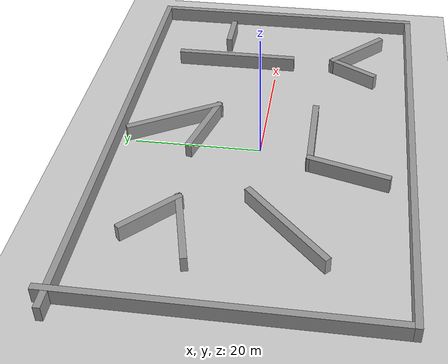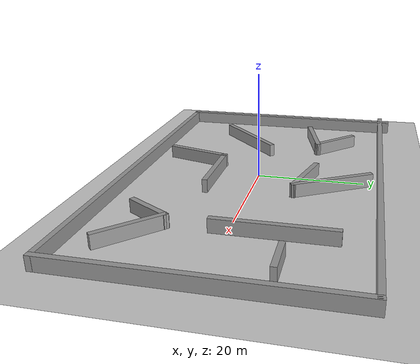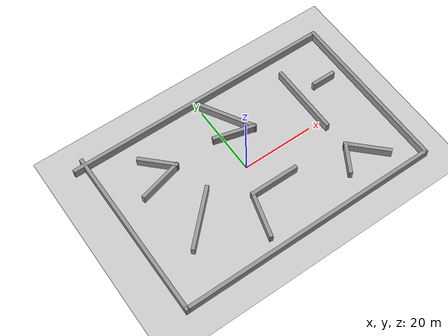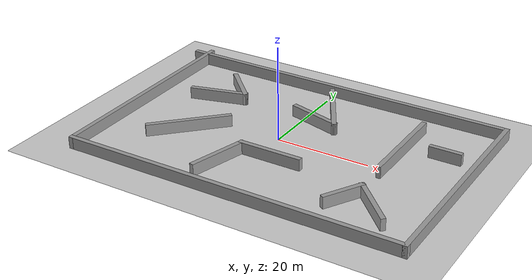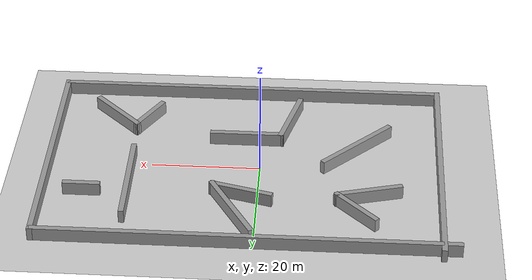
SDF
<sdf version="1.7">
 <world name="default">
  <light name="sun" type="directional">
   <pose>0 0 10 0 -0 0</pose>
   <diffuse>0.8 0.8 0.8 1</diffuse>
   <specular>0.2 0.2 0.2 1</specular>
   <attenuation>
    <range>1000</range>
    <constant>0.9</constant>
    <linear>0.01</linear>
    <quadratic>0.001</quadratic>
   </attenuation>
   <direction>-0.5 0.1 -0.9</direction>
   <spot><inner_angle>0</inner_angle><outer_angle>0</outer_angle><falloff>0</falloff></spot>
  </light>
  <model name="ground_plane">
   <static>1</static>
   <link name="link">
    <collision name="collision">
     <geometry><plane><normal>0 0 1</normal><size>100 100</size></plane></geometry>
     <surface>
      <contact><collide_bitmask>65535</collide_bitmask></contact>
      <friction><ode><mu>100</mu><mu2>50</mu2></ode></friction>
     </surface>
    </collision>
    <visual name="visual">
     <cast_shadows>0</cast_shadows>
     <geometry><plane><normal>0 0 1</normal><size>100 100</size></plane></geometry>
     <material>
      <script><uri>file://media/materials/scripts/gazebo.material</uri><name>Gazebo/Grey</name></script>
     </material>
    </visual>
   </link>
  </model>
  <gravity>0 0 -9.8</gravity>
  <magnetic_field>6e-06 2.3e-05 -4.2e-05</magnetic_field>
  <atmosphere type="adiabatic"/>
  <physics type="ode">
   <max_step_size>0.001</max_step_size>
   <real_time_factor>1</real_time_factor>
   <real_time_update_rate>1000</real_time_update_rate>
  </physics>
  <scene><ambient>0.4 0.4 0.4 1</ambient><background>0.7 0.7 0.7 1</background><shadows>1</shadows></scene>
  <spherical_coordinates>
   <surface_model>EARTH_WGS84</surface_model>
   <latitude_deg>0</latitude_deg>
   <longitude_deg>0</longitude_deg>
   <elevation>0</elevation>
   <heading_deg>0</heading_deg>
  </spherical_coordinates>
  <model name="Untitled">
   <pose>1.5201 0.580999 0 0 -0 0</pose>
   <link name="Wall_11">
    <collision name="Wall_11_Collision">
     <geometry><box><size>12.35 1 2.5</size></box></geometry>
     <pose>0 0 1.25 0 -0 0</pose>
    </collision>
    <visual name="Wall_11_Visual">
     <pose>0 0 1.25 0 -0 0</pose>
     <geometry><box><size>12.35 1 2.5</size></box></geometry>
     <material>
      <script><uri>file://media/materials/scripts/gazebo.material</uri><name>Gazebo/Grey</name></script>
      <ambient>1 1 1 1</ambient>
     </material>
     <meta><layer>0</layer></meta>
    </visual>
    <pose>26.3849 -14.5965 0 0 -0 2.35626</pose>
   </link>
   <link name="Wall_12">
    <collision name="Wall_12_Collision">
     <geometry><box><size>9.09967 1 2.5</size></box></geometry>
     <pose>0 0 1.25 0 -0 0</pose>
    </collision>
    <visual name="Wall_12_Visual">
     <pose>0 0 1.25 0 -0 0</pose>
     <geometry><box><size>9.09967 1 2.5</size></box></geometry>
     <material>
      <script><uri>file://media/materials/scripts/gazebo.material</uri><name>Gazebo/Grey</name></script>
      <ambient>1 1 1 1</ambient>
     </material>
     <meta><layer>0</layer></meta>
    </visual>
    <pose>20.3469 -14.091 0 0 -0 -2.09444</pose>
   </link>
   <link name="Wall_14">
    <collision name="Wall_14_Collision">
     <geometry><box><size>10.6004 1 2.5</size></box></geometry>
     <pose>0 0 1.25 0 -0 0</pose>
    </collision>
    <visual name="Wall_14_Visual">
     <pose>0 0 1.25 0 -0 0</pose>
     <geometry><box><size>10.6004 1 2.5</size></box></geometry>
     <material>
      <script><uri>file://media/materials/scripts/gazebo.material</uri><name>Gazebo/Grey</name></script>
      <ambient>1 1 1 1</ambient>
     </material>
     <meta><layer>0</layer></meta>
    </visual>
    <pose>-19.3691 12.7555 0 0 -0 -0.785472</pose>
   </link>
   <link name="Wall_15">
    <collision name="Wall_15_Collision">
     <geometry><box><size>12.5996 1 2.5</size></box></geometry>
     <pose>0 0 1.25 0 -0 0</pose>
    </collision>
    <visual name="Wall_15_Visual">
     <pose>0 0 1.25 0 -0 0</pose>
     <geometry><box><size>12.5996 1 2.5</size></box></geometry>
     <material>
      <script><uri>file://media/materials/scripts/gazebo.material</uri><name>Gazebo/Grey</name></script>
      <ambient>1 1 1 1</ambient>
     </material>
     <meta><layer>0</layer></meta>
    </visual>
    <pose>-21.5771 7.86 0 0 -0 -2.8798</pose>
   </link>
   <link name="Wall_17">
    <collision name="Wall_17_Collision">
     <geometry><box><size>20.5996 1 2.5</size></box></geometry>
     <pose>0 0 1.25 0 -0 0</pose>
    </collision>
    <visual name="Wall_17_Visual">
     <pose>0 0 1.25 0 -0 0</pose>
     <geometry><box><size>20.5996 1 2.5</size></box></geometry>
     <material>
      <script><uri>file://media/materials/scripts/gazebo.material</uri><name>Gazebo/Grey</name></script>
      <ambient>1 1 1 1</ambient>
     </material>
     <meta><layer>0</layer></meta>
    </visual>
    <pose>22.1119 6.672 0 0 -0 -1.5708</pose>
   </link>
   <link name="Wall_2">
    <collision name="Wall_2_Collision">
     <geometry><box><size>48.8504 1 2.5</size></box></geometry>
     <pose>0 0 1.25 0 -0 0</pose>
    </collision>
    <visual name="Wall_2_Visual">
     <pose>0 0 1.25 0 -0 0</pose>
     <geometry><box><size>48.8504 1 2.5</size></box></geometry>
     <material>
      <script><uri>file://media/materials/scripts/gazebo.material</uri><name>Gazebo/Grey</name></script>
      <ambient>1 1 1 1</ambient>
     </material>
     <meta><layer>0</layer></meta>
    </visual>
    <pose>-34.6751 1e-06 0 0 -0 -1.5708</pose>
   </link>
   <link name="Wall_20">
    <collision name="Wall_20_Collision">
     <geometry><box><size>6.84958 1 2.5</size></box></geometry>
     <pose>0 0 1.25 0 -0 0</pose>
    </collision>
    <visual name="Wall_20_Visual">
     <pose>0 0 1.25 0 -0 0</pose>
     <geometry><box><size>6.84958 1 2.5</size></box></geometry>
     <material>
      <script><uri>file://media/materials/scripts/gazebo.material</uri><name>Gazebo/Grey</name></script>
      <ambient>1 1 1 1</ambient>
     </material>
     <meta><layer>0</layer></meta>
    </visual>
    <pose>30.3099 8.832 0 0 -0 0</pose>
   </link>
   <link name="Wall_22">
    <collision name="Wall_22_Collision">
     <geometry><box><size>17.5997 1 2.5</size></box></geometry>
     <pose>0 0 1.25 0 -0 0</pose>
    </collision>
    <visual name="Wall_22_Visual">
     <pose>0 0 1.25 0 -0 0</pose>
     <geometry><box><size>17.5997 1 2.5</size></box></geometry>
     <material>
      <script><uri>file://media/materials/scripts/gazebo.material</uri><name>Gazebo/Grey</name></script>
      <ambient>1 1 1 1</ambient>
     </material>
     <meta><layer>0</layer></meta>
    </visual>
    <pose>-19.2611 -6.337 0 0 -0 0.785398</pose>
   </link>
   <link name="Wall_24">
    <collision name="Wall_24_Collision">
     <geometry><box><size>13.1004 1 2.5</size></box></geometry>
     <pose>0 0 1.25 0 -0 0</pose>
    </collision>
    <visual name="Wall_24_Visual">
     <pose>0 0 1.25 0 -0 0</pose>
     <geometry><box><size>13.1004 1 2.5</size></box></geometry>
     <material>
      <script><uri>file://media/materials/scripts/gazebo.material</uri><name>Gazebo/Grey</name></script>
      <ambient>1 1 1 1</ambient>
     </material>
     <meta><layer>0</layer></meta>
    </visual>
    <pose>-6.6691 -14.38 0 0 -0 1.30898</pose>
   </link>
   <link name="Wall_25">
    <collision name="Wall_25_Collision">
     <geometry><box><size>13.8495 1 2.5</size></box></geometry>
     <pose>0 0 1.25 0 -0 0</pose>
    </collision>
    <visual name="Wall_25_Visual">
     <pose>0 0 1.25 0 -0 0</pose>
     <geometry><box><size>13.8495 1 2.5</size></box></geometry>
     <material>
      <script><uri>file://media/materials/scripts/gazebo.material</uri><name>Gazebo/Grey</name></script>
      <ambient>1 1 1 1</ambient>
     </material>
     <meta><layer>0</layer></meta>
    </visual>
    <pose>1.3219 -8.536 0 0 -0 0</pose>
   </link>
   <link name="Wall_27">
    <collision name="Wall_27_Collision">
     <geometry><box><size>16.1002 1 2.5</size></box></geometry>
     <pose>0 0 1.25 0 -0 0</pose>
    </collision>
    <visual name="Wall_27_Visual">
     <pose>0 0 1.25 0 -0 0</pose>
     <geometry><box><size>16.1002 1 2.5</size></box></geometry>
     <material>
      <script><uri>file://media/materials/scripts/gazebo.material</uri><name>Gazebo/Grey</name></script>
      <ambient>1 1 1 1</ambient>
     </material>
     <meta><layer>0</layer></meta>
    </visual>
    <pose>2.8569 13.9155 0 0 -0 -1.0472</pose>
   </link>
   <link name="Wall_28">
    <collision name="Wall_28_Collision">
     <geometry><box><size>11.8496 1 2.5</size></box></geometry>
     <pose>0 0 1.25 0 -0 0</pose>
    </collision>
    <visual name="Wall_28_Visual">
     <pose>0 0 1.25 0 -0 0</pose>
     <geometry><box><size>11.8496 1 2.5</size></box></geometry>
     <material>
      <script><uri>file://media/materials/scripts/gazebo.material</uri><name>Gazebo/Grey</name></script>
      <ambient>1 1 1 1</ambient>
     </material>
     <meta><layer>0</layer></meta>
    </visual>
    <pose>1.3919 8.781 0 0 -0 2.8798</pose>
   </link>
   <link name="Wall_3">
    <collision name="Wall_3_Collision">
     <geometry><box><size>73.1002 1 2.5</size></box></geometry>
     <pose>0 0 1.25 0 -0 0</pose>
    </collision>
    <visual name="Wall_3_Visual">
     <pose>0 0 1.25 0 -0 0</pose>
     <geometry><box><size>73.1002 1 2.5</size></box></geometry>
     <material>
      <script><uri>file://media/materials/scripts/gazebo.material</uri><name>Gazebo/Grey</name></script>
      <ambient>1 1 1 1</ambient>
     </material>
     <meta><layer>0</layer></meta>
    </visual>
    <pose>1.3749 -23.925 0 0 -0 0</pose>
   </link>
   <link name="Wall_4">
    <collision name="Wall_4_Collision">
     <geometry><box><size>47.35 1 2.5</size></box></geometry>
     <pose>0 0 1.25 0 -0 0</pose>
    </collision>
    <visual name="Wall_4_Visual">
     <pose>0 0 1.25 0 -0 0</pose>
     <geometry><box><size>47.35 1 2.5</size></box></geometry>
     <material>
      <script><uri>file://media/materials/scripts/gazebo.material</uri><name>Gazebo/Grey</name></script>
      <ambient>1 1 1 1</ambient>
     </material>
     <meta><layer>0</layer></meta>
    </visual>
    <pose>37.4249 -0.749999 0 0 -0 1.5708</pose>
   </link>
   <link name="Wall_5">
    <collision name="Wall_5_Collision">
     <geometry><box><size>75.8498 1 2.5</size></box></geometry>
     <pose>0 0 1.25 0 -0 0</pose>
    </collision>
    <visual name="Wall_5_Visual">
     <pose>0 0 1.25 0 -0 0</pose>
     <geometry><box><size>75.8498 1 2.5</size></box></geometry>
     <material>
      <script><uri>file://media/materials/scripts/gazebo.material</uri><name>Gazebo/Grey</name></script>
      <ambient>1 1 1 1</ambient>
     </material>
     <meta><layer>0</layer></meta>
    </visual>
    <pose>-9.8e-05 22.425 0 0 -0 3.14159</pose>
   </link>
   <static>1</static>
  </model>
 </world>
</sdf>
